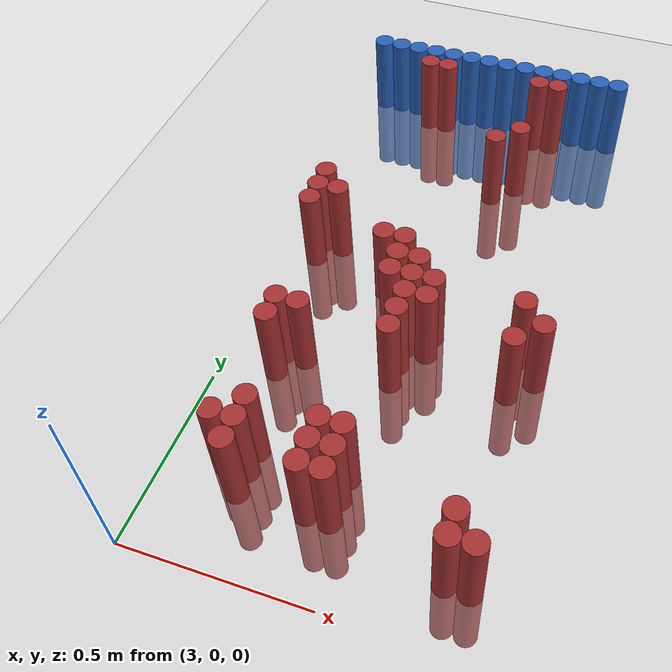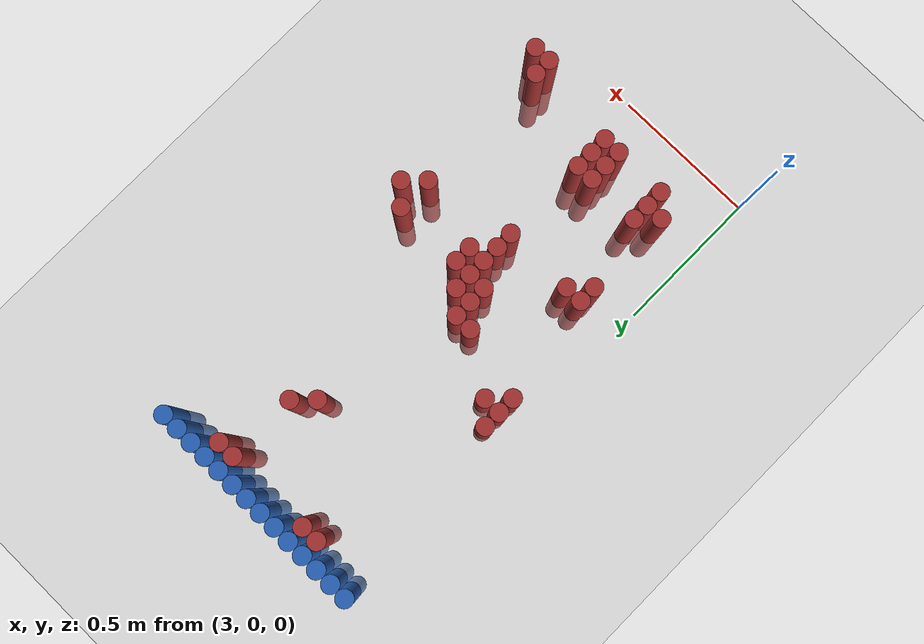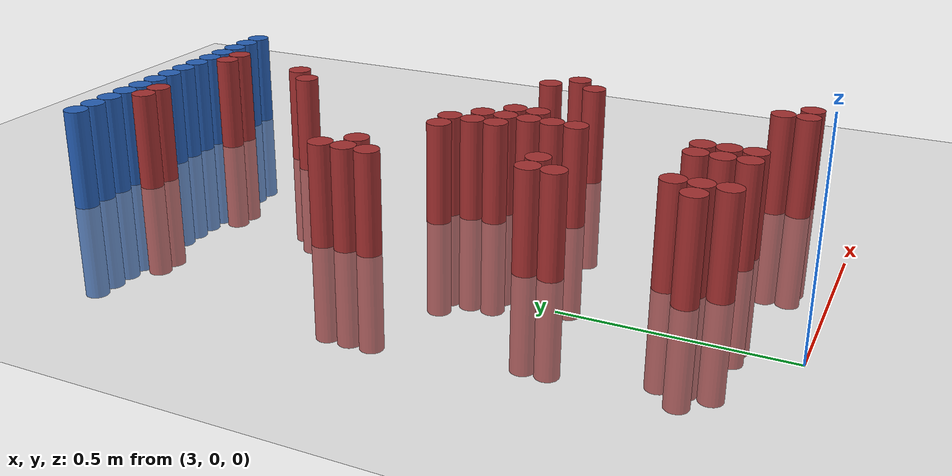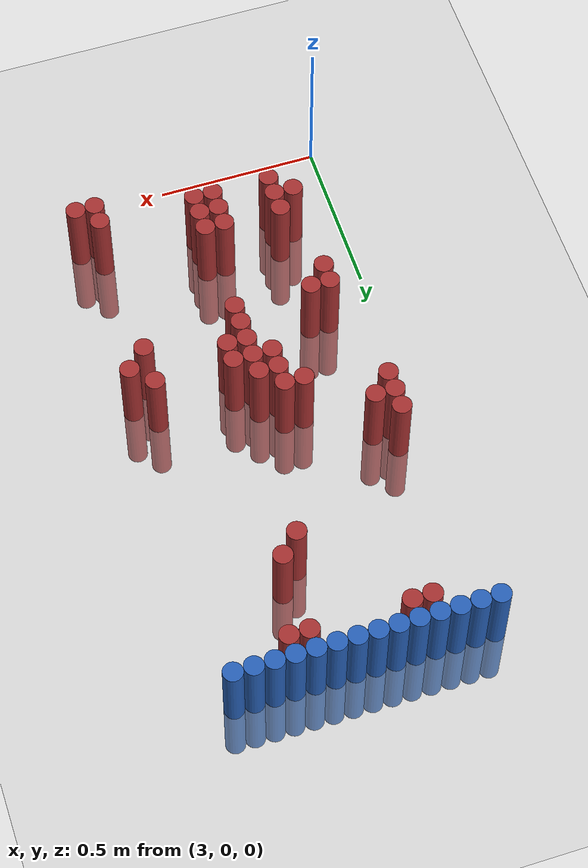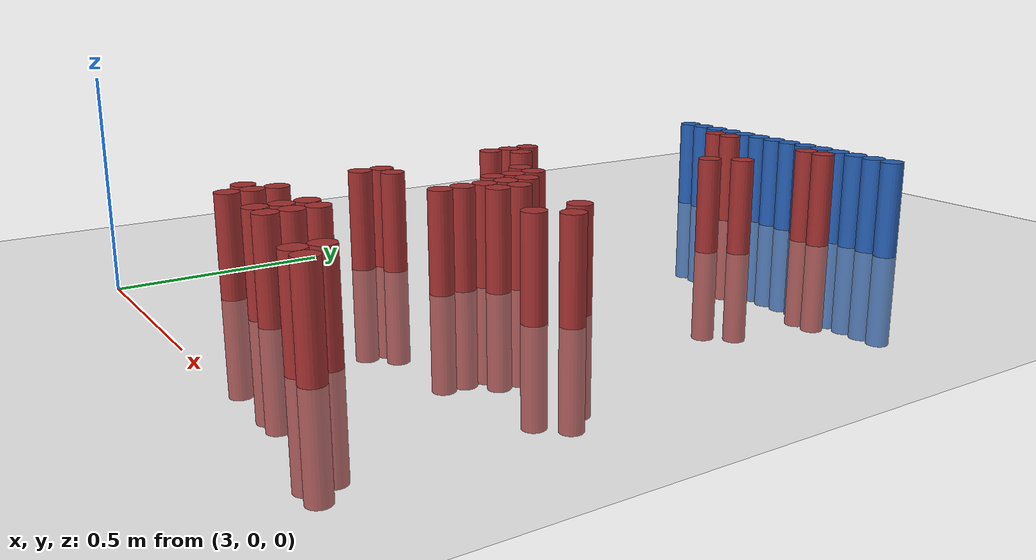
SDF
<sdf version="1.6">
 <world name="default">
  <model name="ground_plane">
   <static>1</static>
   <link name="link">
    <collision name="collision">
     <geometry><plane><normal>0 0 1</normal><size>100 100</size></plane></geometry>
     <surface><friction><ode><mu>100</mu><mu2>50</mu2></ode></friction></surface>
    </collision>
    <visual name="visual">
     <cast_shadows>0</cast_shadows>
     <geometry><plane><normal>0 0 1</normal><size>100 100</size></plane></geometry>
     <material>
      <script><uri>file://media/materials/scripts/gazebo.material</uri><name>Gazebo/Grey</name></script>
     </material>
    </visual>
   </link>
  </model>
  <model name="unit_cylinder_111">
   <static>1</static>
   <pose>3.030000 1.770000 0.000000 0.000000 0.000000 0.000000</pose>
   <link name="link">
    <inertial>
     <mass>1</mass>
     <inertia><ixx>0.145833</ixx><ixy>0</ixy><ixz>0</ixz><iyy>0.145833</iyy><iyz>0</iyz><izz>0.125</izz></inertia>
    </inertial>
    <collision name="collision">
     <geometry><cylinder><radius>0.030000</radius><length>0.5</length></cylinder></geometry>
    </collision>
    <visual name="visual">
     <geometry><cylinder><radius>0.030000</radius><length>0.5</length></cylinder></geometry>
     <material>
      <ambient>0.152000 0.379000 0.720000 1</ambient>
      <diffuse>0.152000 0.379000 0.720000 1</diffuse>
     </material>
     <material>
      <script><name>Gazebo/Grey</name><uri>file://media/materials/scripts/gazebo.material</uri></script>
     </material>
    </visual>
   </link>
  </model>
  <model name="unit_cylinder_112">
   <static>1</static>
   <pose>3.090000 1.770000 0.000000 0.000000 0.000000 0.000000</pose>
   <link name="link">
    <inertial>
     <mass>1</mass>
     <inertia><ixx>0.145833</ixx><ixy>0</ixy><ixz>0</ixz><iyy>0.145833</iyy><iyz>0</iyz><izz>0.125</izz></inertia>
    </inertial>
    <collision name="collision">
     <geometry><cylinder><radius>0.030000</radius><length>0.5</length></cylinder></geometry>
    </collision>
    <visual name="visual">
     <geometry><cylinder><radius>0.030000</radius><length>0.5</length></cylinder></geometry>
     <material>
      <ambient>0.152000 0.379000 0.720000 1</ambient>
      <diffuse>0.152000 0.379000 0.720000 1</diffuse>
     </material>
     <material>
      <script><name>Gazebo/Grey</name><uri>file://media/materials/scripts/gazebo.material</uri></script>
     </material>
    </visual>
   </link>
  </model>
  <model name="unit_cylinder_113">
   <static>1</static>
   <pose>3.150000 1.770000 0.000000 0.000000 0.000000 0.000000</pose>
   <link name="link">
    <inertial>
     <mass>1</mass>
     <inertia><ixx>0.145833</ixx><ixy>0</ixy><ixz>0</ixz><iyy>0.145833</iyy><iyz>0</iyz><izz>0.125</izz></inertia>
    </inertial>
    <collision name="collision">
     <geometry><cylinder><radius>0.030000</radius><length>0.5</length></cylinder></geometry>
    </collision>
    <visual name="visual">
     <geometry><cylinder><radius>0.030000</radius><length>0.5</length></cylinder></geometry>
     <material>
      <ambient>0.152000 0.379000 0.720000 1</ambient>
      <diffuse>0.152000 0.379000 0.720000 1</diffuse>
     </material>
     <material>
      <script><name>Gazebo/Grey</name><uri>file://media/materials/scripts/gazebo.material</uri></script>
     </material>
    </visual>
   </link>
  </model>
  <model name="unit_cylinder_114">
   <static>1</static>
   <pose>3.210000 1.770000 0.000000 0.000000 0.000000 0.000000</pose>
   <link name="link">
    <inertial>
     <mass>1</mass>
     <inertia><ixx>0.145833</ixx><ixy>0</ixy><ixz>0</ixz><iyy>0.145833</iyy><iyz>0</iyz><izz>0.125</izz></inertia>
    </inertial>
    <collision name="collision">
     <geometry><cylinder><radius>0.030000</radius><length>0.5</length></cylinder></geometry>
    </collision>
    <visual name="visual">
     <geometry><cylinder><radius>0.030000</radius><length>0.5</length></cylinder></geometry>
     <material>
      <ambient>0.152000 0.379000 0.720000 1</ambient>
      <diffuse>0.152000 0.379000 0.720000 1</diffuse>
     </material>
     <material>
      <script><name>Gazebo/Grey</name><uri>file://media/materials/scripts/gazebo.material</uri></script>
     </material>
    </visual>
   </link>
  </model>
  <model name="unit_cylinder_115">
   <static>1</static>
   <pose>3.270000 1.770000 0.000000 0.000000 0.000000 0.000000</pose>
   <link name="link">
    <inertial>
     <mass>1</mass>
     <inertia><ixx>0.145833</ixx><ixy>0</ixy><ixz>0</ixz><iyy>0.145833</iyy><iyz>0</iyz><izz>0.125</izz></inertia>
    </inertial>
    <collision name="collision">
     <geometry><cylinder><radius>0.030000</radius><length>0.5</length></cylinder></geometry>
    </collision>
    <visual name="visual">
     <geometry><cylinder><radius>0.030000</radius><length>0.5</length></cylinder></geometry>
     <material>
      <ambient>0.152000 0.379000 0.720000 1</ambient>
      <diffuse>0.152000 0.379000 0.720000 1</diffuse>
     </material>
     <material>
      <script><name>Gazebo/Grey</name><uri>file://media/materials/scripts/gazebo.material</uri></script>
     </material>
    </visual>
   </link>
  </model>
  <model name="unit_cylinder_116">
   <static>1</static>
   <pose>3.330000 1.770000 0.000000 0.000000 0.000000 0.000000</pose>
   <link name="link">
    <inertial>
     <mass>1</mass>
     <inertia><ixx>0.145833</ixx><ixy>0</ixy><ixz>0</ixz><iyy>0.145833</iyy><iyz>0</iyz><izz>0.125</izz></inertia>
    </inertial>
    <collision name="collision">
     <geometry><cylinder><radius>0.030000</radius><length>0.5</length></cylinder></geometry>
    </collision>
    <visual name="visual">
     <geometry><cylinder><radius>0.030000</radius><length>0.5</length></cylinder></geometry>
     <material>
      <ambient>0.152000 0.379000 0.720000 1</ambient>
      <diffuse>0.152000 0.379000 0.720000 1</diffuse>
     </material>
     <material>
      <script><name>Gazebo/Grey</name><uri>file://media/materials/scripts/gazebo.material</uri></script>
     </material>
    </visual>
   </link>
  </model>
  <model name="unit_cylinder_117">
   <static>1</static>
   <pose>3.390000 1.770000 0.000000 0.000000 0.000000 0.000000</pose>
   <link name="link">
    <inertial>
     <mass>1</mass>
     <inertia><ixx>0.145833</ixx><ixy>0</ixy><ixz>0</ixz><iyy>0.145833</iyy><iyz>0</iyz><izz>0.125</izz></inertia>
    </inertial>
    <collision name="collision">
     <geometry><cylinder><radius>0.030000</radius><length>0.5</length></cylinder></geometry>
    </collision>
    <visual name="visual">
     <geometry><cylinder><radius>0.030000</radius><length>0.5</length></cylinder></geometry>
     <material>
      <ambient>0.152000 0.379000 0.720000 1</ambient>
      <diffuse>0.152000 0.379000 0.720000 1</diffuse>
     </material>
     <material>
      <script><name>Gazebo/Grey</name><uri>file://media/materials/scripts/gazebo.material</uri></script>
     </material>
    </visual>
   </link>
  </model>
  <model name="unit_cylinder_118">
   <static>1</static>
   <pose>3.450000 1.770000 0.000000 0.000000 0.000000 0.000000</pose>
   <link name="link">
    <inertial>
     <mass>1</mass>
     <inertia><ixx>0.145833</ixx><ixy>0</ixy><ixz>0</ixz><iyy>0.145833</iyy><iyz>0</iyz><izz>0.125</izz></inertia>
    </inertial>
    <collision name="collision">
     <geometry><cylinder><radius>0.030000</radius><length>0.5</length></cylinder></geometry>
    </collision>
    <visual name="visual">
     <geometry><cylinder><radius>0.030000</radius><length>0.5</length></cylinder></geometry>
     <material>
      <ambient>0.152000 0.379000 0.720000 1</ambient>
      <diffuse>0.152000 0.379000 0.720000 1</diffuse>
     </material>
     <material>
      <script><name>Gazebo/Grey</name><uri>file://media/materials/scripts/gazebo.material</uri></script>
     </material>
    </visual>
   </link>
  </model>
  <model name="unit_cylinder_119">
   <static>1</static>
   <pose>3.510000 1.770000 0.000000 0.000000 0.000000 0.000000</pose>
   <link name="link">
    <inertial>
     <mass>1</mass>
     <inertia><ixx>0.145833</ixx><ixy>0</ixy><ixz>0</ixz><iyy>0.145833</iyy><iyz>0</iyz><izz>0.125</izz></inertia>
    </inertial>
    <collision name="collision">
     <geometry><cylinder><radius>0.030000</radius><length>0.5</length></cylinder></geometry>
    </collision>
    <visual name="visual">
     <geometry><cylinder><radius>0.030000</radius><length>0.5</length></cylinder></geometry>
     <material>
      <ambient>0.152000 0.379000 0.720000 1</ambient>
      <diffuse>0.152000 0.379000 0.720000 1</diffuse>
     </material>
     <material>
      <script><name>Gazebo/Grey</name><uri>file://media/materials/scripts/gazebo.material</uri></script>
     </material>
    </visual>
   </link>
  </model>
  <model name="unit_cylinder_120">
   <static>1</static>
   <pose>3.570000 1.770000 0.000000 0.000000 0.000000 0.000000</pose>
   <link name="link">
    <inertial>
     <mass>1</mass>
     <inertia><ixx>0.145833</ixx><ixy>0</ixy><ixz>0</ixz><iyy>0.145833</iyy><iyz>0</iyz><izz>0.125</izz></inertia>
    </inertial>
    <collision name="collision">
     <geometry><cylinder><radius>0.030000</radius><length>0.5</length></cylinder></geometry>
    </collision>
    <visual name="visual">
     <geometry><cylinder><radius>0.030000</radius><length>0.5</length></cylinder></geometry>
     <material>
      <ambient>0.152000 0.379000 0.720000 1</ambient>
      <diffuse>0.152000 0.379000 0.720000 1</diffuse>
     </material>
     <material>
      <script><name>Gazebo/Grey</name><uri>file://media/materials/scripts/gazebo.material</uri></script>
     </material>
    </visual>
   </link>
  </model>
  <model name="unit_cylinder_121">
   <static>1</static>
   <pose>3.630000 1.770000 0.000000 0.000000 0.000000 0.000000</pose>
   <link name="link">
    <inertial>
     <mass>1</mass>
     <inertia><ixx>0.145833</ixx><ixy>0</ixy><ixz>0</ixz><iyy>0.145833</iyy><iyz>0</iyz><izz>0.125</izz></inertia>
    </inertial>
    <collision name="collision">
     <geometry><cylinder><radius>0.030000</radius><length>0.5</length></cylinder></geometry>
    </collision>
    <visual name="visual">
     <geometry><cylinder><radius>0.030000</radius><length>0.5</length></cylinder></geometry>
     <material>
      <ambient>0.152000 0.379000 0.720000 1</ambient>
      <diffuse>0.152000 0.379000 0.720000 1</diffuse>
     </material>
     <material>
      <script><name>Gazebo/Grey</name><uri>file://media/materials/scripts/gazebo.material</uri></script>
     </material>
    </visual>
   </link>
  </model>
  <model name="unit_cylinder_122">
   <static>1</static>
   <pose>3.690000 1.770000 0.000000 0.000000 0.000000 0.000000</pose>
   <link name="link">
    <inertial>
     <mass>1</mass>
     <inertia><ixx>0.145833</ixx><ixy>0</ixy><ixz>0</ixz><iyy>0.145833</iyy><iyz>0</iyz><izz>0.125</izz></inertia>
    </inertial>
    <collision name="collision">
     <geometry><cylinder><radius>0.030000</radius><length>0.5</length></cylinder></geometry>
    </collision>
    <visual name="visual">
     <geometry><cylinder><radius>0.030000</radius><length>0.5</length></cylinder></geometry>
     <material>
      <ambient>0.152000 0.379000 0.720000 1</ambient>
      <diffuse>0.152000 0.379000 0.720000 1</diffuse>
     </material>
     <material>
      <script><name>Gazebo/Grey</name><uri>file://media/materials/scripts/gazebo.material</uri></script>
     </material>
    </visual>
   </link>
  </model>
  <model name="unit_cylinder_123">
   <static>1</static>
   <pose>3.750000 1.770000 0.000000 0.000000 0.000000 0.000000</pose>
   <link name="link">
    <inertial>
     <mass>1</mass>
     <inertia><ixx>0.145833</ixx><ixy>0</ixy><ixz>0</ixz><iyy>0.145833</iyy><iyz>0</iyz><izz>0.125</izz></inertia>
    </inertial>
    <collision name="collision">
     <geometry><cylinder><radius>0.030000</radius><length>0.5</length></cylinder></geometry>
    </collision>
    <visual name="visual">
     <geometry><cylinder><radius>0.030000</radius><length>0.5</length></cylinder></geometry>
     <material>
      <ambient>0.152000 0.379000 0.720000 1</ambient>
      <diffuse>0.152000 0.379000 0.720000 1</diffuse>
     </material>
     <material>
      <script><name>Gazebo/Grey</name><uri>file://media/materials/scripts/gazebo.material</uri></script>
     </material>
    </visual>
   </link>
  </model>
  <model name="unit_cylinder_124">
   <static>1</static>
   <pose>3.810000 1.770000 0.000000 0.000000 0.000000 0.000000</pose>
   <link name="link">
    <inertial>
     <mass>1</mass>
     <inertia><ixx>0.145833</ixx><ixy>0</ixy><ixz>0</ixz><iyy>0.145833</iyy><iyz>0</iyz><izz>0.125</izz></inertia>
    </inertial>
    <collision name="collision">
     <geometry><cylinder><radius>0.030000</radius><length>0.5</length></cylinder></geometry>
    </collision>
    <visual name="visual">
     <geometry><cylinder><radius>0.030000</radius><length>0.5</length></cylinder></geometry>
     <material>
      <ambient>0.152000 0.379000 0.720000 1</ambient>
      <diffuse>0.152000 0.379000 0.720000 1</diffuse>
     </material>
     <material>
      <script><name>Gazebo/Grey</name><uri>file://media/materials/scripts/gazebo.material</uri></script>
     </material>
    </visual>
   </link>
  </model>
  <model name="unit_cylinder_130">
   <static>1</static>
   <pose>3.210000 1.710000 0.000000 0.000000 0.000000 0.000000</pose>
   <link name="link">
    <inertial>
     <mass>1</mass>
     <inertia><ixx>0.145833</ixx><ixy>0</ixy><ixz>0</ixz><iyy>0.145833</iyy><iyz>0</iyz><izz>0.125</izz></inertia>
    </inertial>
    <collision name="collision">
     <geometry><cylinder><radius>0.030000</radius><length>0.5</length></cylinder></geometry>
    </collision>
    <visual name="visual">
     <geometry><cylinder><radius>0.030000</radius><length>0.5</length></cylinder></geometry>
     <material>
      <ambient>0.648000 0.192000 0.192000 1</ambient>
      <diffuse>0.648000 0.192000 0.192000 1</diffuse>
     </material>
     <material>
      <script><name>Gazebo/Grey</name><uri>file://media/materials/scripts/gazebo.material</uri></script>
     </material>
    </visual>
   </link>
  </model>
  <model name="unit_cylinder_131">
   <static>1</static>
   <pose>3.270000 1.710000 0.000000 0.000000 0.000000 0.000000</pose>
   <link name="link">
    <inertial>
     <mass>1</mass>
     <inertia><ixx>0.145833</ixx><ixy>0</ixy><ixz>0</ixz><iyy>0.145833</iyy><iyz>0</iyz><izz>0.125</izz></inertia>
    </inertial>
    <collision name="collision">
     <geometry><cylinder><radius>0.030000</radius><length>0.5</length></cylinder></geometry>
    </collision>
    <visual name="visual">
     <geometry><cylinder><radius>0.030000</radius><length>0.5</length></cylinder></geometry>
     <material>
      <ambient>0.648000 0.192000 0.192000 1</ambient>
      <diffuse>0.648000 0.192000 0.192000 1</diffuse>
     </material>
     <material>
      <script><name>Gazebo/Grey</name><uri>file://media/materials/scripts/gazebo.material</uri></script>
     </material>
    </visual>
   </link>
  </model>
  <model name="unit_cylinder_132">
   <static>1</static>
   <pose>3.570000 1.710000 0.000000 0.000000 0.000000 0.000000</pose>
   <link name="link">
    <inertial>
     <mass>1</mass>
     <inertia><ixx>0.145833</ixx><ixy>0</ixy><ixz>0</ixz><iyy>0.145833</iyy><iyz>0</iyz><izz>0.125</izz></inertia>
    </inertial>
    <collision name="collision">
     <geometry><cylinder><radius>0.030000</radius><length>0.5</length></cylinder></geometry>
    </collision>
    <visual name="visual">
     <geometry><cylinder><radius>0.030000</radius><length>0.5</length></cylinder></geometry>
     <material>
      <ambient>0.648000 0.192000 0.192000 1</ambient>
      <diffuse>0.648000 0.192000 0.192000 1</diffuse>
     </material>
     <material>
      <script><name>Gazebo/Grey</name><uri>file://media/materials/scripts/gazebo.material</uri></script>
     </material>
    </visual>
   </link>
  </model>
  <model name="unit_cylinder_133">
   <static>1</static>
   <pose>3.630000 1.710000 0.000000 0.000000 0.000000 0.000000</pose>
   <link name="link">
    <inertial>
     <mass>1</mass>
     <inertia><ixx>0.145833</ixx><ixy>0</ixy><ixz>0</ixz><iyy>0.145833</iyy><iyz>0</iyz><izz>0.125</izz></inertia>
    </inertial>
    <collision name="collision">
     <geometry><cylinder><radius>0.030000</radius><length>0.5</length></cylinder></geometry>
    </collision>
    <visual name="visual">
     <geometry><cylinder><radius>0.030000</radius><length>0.5</length></cylinder></geometry>
     <material>
      <ambient>0.648000 0.192000 0.192000 1</ambient>
      <diffuse>0.648000 0.192000 0.192000 1</diffuse>
     </material>
     <material>
      <script><name>Gazebo/Grey</name><uri>file://media/materials/scripts/gazebo.material</uri></script>
     </material>
    </visual>
   </link>
  </model>
  <model name="unit_cylinder_134">
   <static>1</static>
   <pose>3.570000 1.470000 0.000000 0.000000 0.000000 0.000000</pose>
   <link name="link">
    <inertial>
     <mass>1</mass>
     <inertia><ixx>0.145833</ixx><ixy>0</ixy><ixz>0</ixz><iyy>0.145833</iyy><iyz>0</iyz><izz>0.125</izz></inertia>
    </inertial>
    <collision name="collision">
     <geometry><cylinder><radius>0.030000</radius><length>0.5</length></cylinder></geometry>
    </collision>
    <visual name="visual">
     <geometry><cylinder><radius>0.030000</radius><length>0.5</length></cylinder></geometry>
     <material>
      <ambient>0.648000 0.192000 0.192000 1</ambient>
      <diffuse>0.648000 0.192000 0.192000 1</diffuse>
     </material>
     <material>
      <script><name>Gazebo/Grey</name><uri>file://media/materials/scripts/gazebo.material</uri></script>
     </material>
    </visual>
   </link>
  </model>
  <model name="unit_cylinder_135">
   <static>1</static>
   <pose>3.510000 1.410000 0.000000 0.000000 0.000000 0.000000</pose>
   <link name="link">
    <inertial>
     <mass>1</mass>
     <inertia><ixx>0.145833</ixx><ixy>0</ixy><ixz>0</ixz><iyy>0.145833</iyy><iyz>0</iyz><izz>0.125</izz></inertia>
    </inertial>
    <collision name="collision">
     <geometry><cylinder><radius>0.030000</radius><length>0.5</length></cylinder></geometry>
    </collision>
    <visual name="visual">
     <geometry><cylinder><radius>0.030000</radius><length>0.5</length></cylinder></geometry>
     <material>
      <ambient>0.648000 0.192000 0.192000 1</ambient>
      <diffuse>0.648000 0.192000 0.192000 1</diffuse>
     </material>
     <material>
      <script><name>Gazebo/Grey</name><uri>file://media/materials/scripts/gazebo.material</uri></script>
     </material>
    </visual>
   </link>
  </model>
  <model name="unit_cylinder_147">
   <static>1</static>
   <pose>3.090000 1.110000 0.000000 0.000000 0.000000 0.000000</pose>
   <link name="link">
    <inertial>
     <mass>1</mass>
     <inertia><ixx>0.145833</ixx><ixy>0</ixy><ixz>0</ixz><iyy>0.145833</iyy><iyz>0</iyz><izz>0.125</izz></inertia>
    </inertial>
    <collision name="collision">
     <geometry><cylinder><radius>0.030000</radius><length>0.5</length></cylinder></geometry>
    </collision>
    <visual name="visual">
     <geometry><cylinder><radius>0.030000</radius><length>0.5</length></cylinder></geometry>
     <material>
      <ambient>0.648000 0.192000 0.192000 1</ambient>
      <diffuse>0.648000 0.192000 0.192000 1</diffuse>
     </material>
     <material>
      <script><name>Gazebo/Grey</name><uri>file://media/materials/scripts/gazebo.material</uri></script>
     </material>
    </visual>
   </link>
  </model>
  <model name="unit_cylinder_148">
   <static>1</static>
   <pose>3.090000 1.050000 0.000000 0.000000 0.000000 0.000000</pose>
   <link name="link">
    <inertial>
     <mass>1</mass>
     <inertia><ixx>0.145833</ixx><ixy>0</ixy><ixz>0</ixz><iyy>0.145833</iyy><iyz>0</iyz><izz>0.125</izz></inertia>
    </inertial>
    <collision name="collision">
     <geometry><cylinder><radius>0.030000</radius><length>0.5</length></cylinder></geometry>
    </collision>
    <visual name="visual">
     <geometry><cylinder><radius>0.030000</radius><length>0.5</length></cylinder></geometry>
     <material>
      <ambient>0.648000 0.192000 0.192000 1</ambient>
      <diffuse>0.648000 0.192000 0.192000 1</diffuse>
     </material>
     <material>
      <script><name>Gazebo/Grey</name><uri>file://media/materials/scripts/gazebo.material</uri></script>
     </material>
    </visual>
   </link>
  </model>
  <model name="unit_cylinder_149">
   <static>1</static>
   <pose>3.150000 1.050000 0.000000 0.000000 0.000000 0.000000</pose>
   <link name="link">
    <inertial>
     <mass>1</mass>
     <inertia><ixx>0.145833</ixx><ixy>0</ixy><ixz>0</ixz><iyy>0.145833</iyy><iyz>0</iyz><izz>0.125</izz></inertia>
    </inertial>
    <collision name="collision">
     <geometry><cylinder><radius>0.030000</radius><length>0.5</length></cylinder></geometry>
    </collision>
    <visual name="visual">
     <geometry><cylinder><radius>0.030000</radius><length>0.5</length></cylinder></geometry>
     <material>
      <ambient>0.648000 0.192000 0.192000 1</ambient>
      <diffuse>0.648000 0.192000 0.192000 1</diffuse>
     </material>
     <material>
      <script><name>Gazebo/Grey</name><uri>file://media/materials/scripts/gazebo.material</uri></script>
     </material>
    </visual>
   </link>
  </model>
  <model name="unit_cylinder_151">
   <static>1</static>
   <pose>3.090000 0.990000 0.000000 0.000000 0.000000 0.000000</pose>
   <link name="link">
    <inertial>
     <mass>1</mass>
     <inertia><ixx>0.145833</ixx><ixy>0</ixy><ixz>0</ixz><iyy>0.145833</iyy><iyz>0</iyz><izz>0.125</izz></inertia>
    </inertial>
    <collision name="collision">
     <geometry><cylinder><radius>0.030000</radius><length>0.5</length></cylinder></geometry>
    </collision>
    <visual name="visual">
     <geometry><cylinder><radius>0.030000</radius><length>0.5</length></cylinder></geometry>
     <material>
      <ambient>0.648000 0.192000 0.192000 1</ambient>
      <diffuse>0.648000 0.192000 0.192000 1</diffuse>
     </material>
     <material>
      <script><name>Gazebo/Grey</name><uri>file://media/materials/scripts/gazebo.material</uri></script>
     </material>
    </visual>
   </link>
  </model>
  <model name="unit_cylinder_155">
   <static>1</static>
   <pose>3.330000 0.930000 0.000000 0.000000 0.000000 0.000000</pose>
   <link name="link">
    <inertial>
     <mass>1</mass>
     <inertia><ixx>0.145833</ixx><ixy>0</ixy><ixz>0</ixz><iyy>0.145833</iyy><iyz>0</iyz><izz>0.125</izz></inertia>
    </inertial>
    <collision name="collision">
     <geometry><cylinder><radius>0.030000</radius><length>0.5</length></cylinder></geometry>
    </collision>
    <visual name="visual">
     <geometry><cylinder><radius>0.030000</radius><length>0.5</length></cylinder></geometry>
     <material>
      <ambient>0.648000 0.192000 0.192000 1</ambient>
      <diffuse>0.648000 0.192000 0.192000 1</diffuse>
     </material>
     <material>
      <script><name>Gazebo/Grey</name><uri>file://media/materials/scripts/gazebo.material</uri></script>
     </material>
    </visual>
   </link>
  </model>
  <model name="unit_cylinder_156">
   <static>1</static>
   <pose>3.390000 0.930000 0.000000 0.000000 0.000000 0.000000</pose>
   <link name="link">
    <inertial>
     <mass>1</mass>
     <inertia><ixx>0.145833</ixx><ixy>0</ixy><ixz>0</ixz><iyy>0.145833</iyy><iyz>0</iyz><izz>0.125</izz></inertia>
    </inertial>
    <collision name="collision">
     <geometry><cylinder><radius>0.030000</radius><length>0.5</length></cylinder></geometry>
    </collision>
    <visual name="visual">
     <geometry><cylinder><radius>0.030000</radius><length>0.5</length></cylinder></geometry>
     <material>
      <ambient>0.648000 0.192000 0.192000 1</ambient>
      <diffuse>0.648000 0.192000 0.192000 1</diffuse>
     </material>
     <material>
      <script><name>Gazebo/Grey</name><uri>file://media/materials/scripts/gazebo.material</uri></script>
     </material>
    </visual>
   </link>
  </model>
  <model name="unit_cylinder_162">
   <static>1</static>
   <pose>3.390000 0.870000 0.000000 0.000000 0.000000 0.000000</pose>
   <link name="link">
    <inertial>
     <mass>1</mass>
     <inertia><ixx>0.145833</ixx><ixy>0</ixy><ixz>0</ixz><iyy>0.145833</iyy><iyz>0</iyz><izz>0.125</izz></inertia>
    </inertial>
    <collision name="collision">
     <geometry><cylinder><radius>0.030000</radius><length>0.5</length></cylinder></geometry>
    </collision>
    <visual name="visual">
     <geometry><cylinder><radius>0.030000</radius><length>0.5</length></cylinder></geometry>
     <material>
      <ambient>0.648000 0.192000 0.192000 1</ambient>
      <diffuse>0.648000 0.192000 0.192000 1</diffuse>
     </material>
     <material>
      <script><name>Gazebo/Grey</name><uri>file://media/materials/scripts/gazebo.material</uri></script>
     </material>
    </visual>
   </link>
  </model>
  <model name="unit_cylinder_163">
   <static>1</static>
   <pose>3.450000 0.870000 0.000000 0.000000 0.000000 0.000000</pose>
   <link name="link">
    <inertial>
     <mass>1</mass>
     <inertia><ixx>0.145833</ixx><ixy>0</ixy><ixz>0</ixz><iyy>0.145833</iyy><iyz>0</iyz><izz>0.125</izz></inertia>
    </inertial>
    <collision name="collision">
     <geometry><cylinder><radius>0.030000</radius><length>0.5</length></cylinder></geometry>
    </collision>
    <visual name="visual">
     <geometry><cylinder><radius>0.030000</radius><length>0.5</length></cylinder></geometry>
     <material>
      <ambient>0.648000 0.192000 0.192000 1</ambient>
      <diffuse>0.648000 0.192000 0.192000 1</diffuse>
     </material>
     <material>
      <script><name>Gazebo/Grey</name><uri>file://media/materials/scripts/gazebo.material</uri></script>
     </material>
    </visual>
   </link>
  </model>
  <model name="unit_cylinder_167">
   <static>1</static>
   <pose>3.390000 0.810000 0.000000 0.000000 0.000000 0.000000</pose>
   <link name="link">
    <inertial>
     <mass>1</mass>
     <inertia><ixx>0.145833</ixx><ixy>0</ixy><ixz>0</ixz><iyy>0.145833</iyy><iyz>0</iyz><izz>0.125</izz></inertia>
    </inertial>
    <collision name="collision">
     <geometry><cylinder><radius>0.030000</radius><length>0.5</length></cylinder></geometry>
    </collision>
    <visual name="visual">
     <geometry><cylinder><radius>0.030000</radius><length>0.5</length></cylinder></geometry>
     <material>
      <ambient>0.648000 0.192000 0.192000 1</ambient>
      <diffuse>0.648000 0.192000 0.192000 1</diffuse>
     </material>
     <material>
      <script><name>Gazebo/Grey</name><uri>file://media/materials/scripts/gazebo.material</uri></script>
     </material>
    </visual>
   </link>
  </model>
  <model name="unit_cylinder_168">
   <static>1</static>
   <pose>3.450000 0.810000 0.000000 0.000000 0.000000 0.000000</pose>
   <link name="link">
    <inertial>
     <mass>1</mass>
     <inertia><ixx>0.145833</ixx><ixy>0</ixy><ixz>0</ixz><iyy>0.145833</iyy><iyz>0</iyz><izz>0.125</izz></inertia>
    </inertial>
    <collision name="collision">
     <geometry><cylinder><radius>0.030000</radius><length>0.5</length></cylinder></geometry>
    </collision>
    <visual name="visual">
     <geometry><cylinder><radius>0.030000</radius><length>0.5</length></cylinder></geometry>
     <material>
      <ambient>0.648000 0.192000 0.192000 1</ambient>
      <diffuse>0.648000 0.192000 0.192000 1</diffuse>
     </material>
     <material>
      <script><name>Gazebo/Grey</name><uri>file://media/materials/scripts/gazebo.material</uri></script>
     </material>
    </visual>
   </link>
  </model>
  <model name="unit_cylinder_169">
   <static>1</static>
   <pose>3.510000 0.810000 0.000000 0.000000 0.000000 0.000000</pose>
   <link name="link">
    <inertial>
     <mass>1</mass>
     <inertia><ixx>0.145833</ixx><ixy>0</ixy><ixz>0</ixz><iyy>0.145833</iyy><iyz>0</iyz><izz>0.125</izz></inertia>
    </inertial>
    <collision name="collision">
     <geometry><cylinder><radius>0.030000</radius><length>0.5</length></cylinder></geometry>
    </collision>
    <visual name="visual">
     <geometry><cylinder><radius>0.030000</radius><length>0.5</length></cylinder></geometry>
     <material>
      <ambient>0.648000 0.192000 0.192000 1</ambient>
      <diffuse>0.648000 0.192000 0.192000 1</diffuse>
     </material>
     <material>
      <script><name>Gazebo/Grey</name><uri>file://media/materials/scripts/gazebo.material</uri></script>
     </material>
    </visual>
   </link>
  </model>
  <model name="unit_cylinder_170">
   <static>1</static>
   <pose>3.750000 0.810000 0.000000 0.000000 0.000000 0.000000</pose>
   <link name="link">
    <inertial>
     <mass>1</mass>
     <inertia><ixx>0.145833</ixx><ixy>0</ixy><ixz>0</ixz><iyy>0.145833</iyy><iyz>0</iyz><izz>0.125</izz></inertia>
    </inertial>
    <collision name="collision">
     <geometry><cylinder><radius>0.030000</radius><length>0.5</length></cylinder></geometry>
    </collision>
    <visual name="visual">
     <geometry><cylinder><radius>0.030000</radius><length>0.5</length></cylinder></geometry>
     <material>
      <ambient>0.648000 0.192000 0.192000 1</ambient>
      <diffuse>0.648000 0.192000 0.192000 1</diffuse>
     </material>
     <material>
      <script><name>Gazebo/Grey</name><uri>file://media/materials/scripts/gazebo.material</uri></script>
     </material>
    </visual>
   </link>
  </model>
  <model name="unit_cylinder_173">
   <static>1</static>
   <pose>3.450000 0.750000 0.000000 0.000000 0.000000 0.000000</pose>
   <link name="link">
    <inertial>
     <mass>1</mass>
     <inertia><ixx>0.145833</ixx><ixy>0</ixy><ixz>0</ixz><iyy>0.145833</iyy><iyz>0</iyz><izz>0.125</izz></inertia>
    </inertial>
    <collision name="collision">
     <geometry><cylinder><radius>0.030000</radius><length>0.5</length></cylinder></geometry>
    </collision>
    <visual name="visual">
     <geometry><cylinder><radius>0.030000</radius><length>0.5</length></cylinder></geometry>
     <material>
      <ambient>0.648000 0.192000 0.192000 1</ambient>
      <diffuse>0.648000 0.192000 0.192000 1</diffuse>
     </material>
     <material>
      <script><name>Gazebo/Grey</name><uri>file://media/materials/scripts/gazebo.material</uri></script>
     </material>
    </visual>
   </link>
  </model>
  <model name="unit_cylinder_174">
   <static>1</static>
   <pose>3.510000 0.750000 0.000000 0.000000 0.000000 0.000000</pose>
   <link name="link">
    <inertial>
     <mass>1</mass>
     <inertia><ixx>0.145833</ixx><ixy>0</ixy><ixz>0</ixz><iyy>0.145833</iyy><iyz>0</iyz><izz>0.125</izz></inertia>
    </inertial>
    <collision name="collision">
     <geometry><cylinder><radius>0.030000</radius><length>0.5</length></cylinder></geometry>
    </collision>
    <visual name="visual">
     <geometry><cylinder><radius>0.030000</radius><length>0.5</length></cylinder></geometry>
     <material>
      <ambient>0.648000 0.192000 0.192000 1</ambient>
      <diffuse>0.648000 0.192000 0.192000 1</diffuse>
     </material>
     <material>
      <script><name>Gazebo/Grey</name><uri>file://media/materials/scripts/gazebo.material</uri></script>
     </material>
    </visual>
   </link>
  </model>
  <model name="unit_cylinder_175">
   <static>1</static>
   <pose>3.810000 0.750000 0.000000 0.000000 0.000000 0.000000</pose>
   <link name="link">
    <inertial>
     <mass>1</mass>
     <inertia><ixx>0.145833</ixx><ixy>0</ixy><ixz>0</ixz><iyy>0.145833</iyy><iyz>0</iyz><izz>0.125</izz></inertia>
    </inertial>
    <collision name="collision">
     <geometry><cylinder><radius>0.030000</radius><length>0.5</length></cylinder></geometry>
    </collision>
    <visual name="visual">
     <geometry><cylinder><radius>0.030000</radius><length>0.5</length></cylinder></geometry>
     <material>
      <ambient>0.648000 0.192000 0.192000 1</ambient>
      <diffuse>0.648000 0.192000 0.192000 1</diffuse>
     </material>
     <material>
      <script><name>Gazebo/Grey</name><uri>file://media/materials/scripts/gazebo.material</uri></script>
     </material>
    </visual>
   </link>
  </model>
  <model name="unit_cylinder_178">
   <static>1</static>
   <pose>3.450000 0.690000 0.000000 0.000000 0.000000 0.000000</pose>
   <link name="link">
    <inertial>
     <mass>1</mass>
     <inertia><ixx>0.145833</ixx><ixy>0</ixy><ixz>0</ixz><iyy>0.145833</iyy><iyz>0</iyz><izz>0.125</izz></inertia>
    </inertial>
    <collision name="collision">
     <geometry><cylinder><radius>0.030000</radius><length>0.5</length></cylinder></geometry>
    </collision>
    <visual name="visual">
     <geometry><cylinder><radius>0.030000</radius><length>0.5</length></cylinder></geometry>
     <material>
      <ambient>0.648000 0.192000 0.192000 1</ambient>
      <diffuse>0.648000 0.192000 0.192000 1</diffuse>
     </material>
     <material>
      <script><name>Gazebo/Grey</name><uri>file://media/materials/scripts/gazebo.material</uri></script>
     </material>
    </visual>
   </link>
  </model>
  <model name="unit_cylinder_179">
   <static>1</static>
   <pose>3.750000 0.690000 0.000000 0.000000 0.000000 0.000000</pose>
   <link name="link">
    <inertial>
     <mass>1</mass>
     <inertia><ixx>0.145833</ixx><ixy>0</ixy><ixz>0</ixz><iyy>0.145833</iyy><iyz>0</iyz><izz>0.125</izz></inertia>
    </inertial>
    <collision name="collision">
     <geometry><cylinder><radius>0.030000</radius><length>0.5</length></cylinder></geometry>
    </collision>
    <visual name="visual">
     <geometry><cylinder><radius>0.030000</radius><length>0.5</length></cylinder></geometry>
     <material>
      <ambient>0.648000 0.192000 0.192000 1</ambient>
      <diffuse>0.648000 0.192000 0.192000 1</diffuse>
     </material>
     <material>
      <script><name>Gazebo/Grey</name><uri>file://media/materials/scripts/gazebo.material</uri></script>
     </material>
    </visual>
   </link>
  </model>
  <model name="unit_cylinder_182">
   <static>1</static>
   <pose>3.150000 0.630000 0.000000 0.000000 0.000000 0.000000</pose>
   <link name="link">
    <inertial>
     <mass>1</mass>
     <inertia><ixx>0.145833</ixx><ixy>0</ixy><ixz>0</ixz><iyy>0.145833</iyy><iyz>0</iyz><izz>0.125</izz></inertia>
    </inertial>
    <collision name="collision">
     <geometry><cylinder><radius>0.030000</radius><length>0.5</length></cylinder></geometry>
    </collision>
    <visual name="visual">
     <geometry><cylinder><radius>0.030000</radius><length>0.5</length></cylinder></geometry>
     <material>
      <ambient>0.648000 0.192000 0.192000 1</ambient>
      <diffuse>0.648000 0.192000 0.192000 1</diffuse>
     </material>
     <material>
      <script><name>Gazebo/Grey</name><uri>file://media/materials/scripts/gazebo.material</uri></script>
     </material>
    </visual>
   </link>
  </model>
  <model name="unit_cylinder_183">
   <static>1</static>
   <pose>3.210000 0.630000 0.000000 0.000000 0.000000 0.000000</pose>
   <link name="link">
    <inertial>
     <mass>1</mass>
     <inertia><ixx>0.145833</ixx><ixy>0</ixy><ixz>0</ixz><iyy>0.145833</iyy><iyz>0</iyz><izz>0.125</izz></inertia>
    </inertial>
    <collision name="collision">
     <geometry><cylinder><radius>0.030000</radius><length>0.5</length></cylinder></geometry>
    </collision>
    <visual name="visual">
     <geometry><cylinder><radius>0.030000</radius><length>0.5</length></cylinder></geometry>
     <material>
      <ambient>0.648000 0.192000 0.192000 1</ambient>
      <diffuse>0.648000 0.192000 0.192000 1</diffuse>
     </material>
     <material>
      <script><name>Gazebo/Grey</name><uri>file://media/materials/scripts/gazebo.material</uri></script>
     </material>
    </visual>
   </link>
  </model>
  <model name="unit_cylinder_184">
   <static>1</static>
   <pose>3.450000 0.630000 0.000000 0.000000 0.000000 0.000000</pose>
   <link name="link">
    <inertial>
     <mass>1</mass>
     <inertia><ixx>0.145833</ixx><ixy>0</ixy><ixz>0</ixz><iyy>0.145833</iyy><iyz>0</iyz><izz>0.125</izz></inertia>
    </inertial>
    <collision name="collision">
     <geometry><cylinder><radius>0.030000</radius><length>0.5</length></cylinder></geometry>
    </collision>
    <visual name="visual">
     <geometry><cylinder><radius>0.030000</radius><length>0.5</length></cylinder></geometry>
     <material>
      <ambient>0.648000 0.192000 0.192000 1</ambient>
      <diffuse>0.648000 0.192000 0.192000 1</diffuse>
     </material>
     <material>
      <script><name>Gazebo/Grey</name><uri>file://media/materials/scripts/gazebo.material</uri></script>
     </material>
    </visual>
   </link>
  </model>
  <model name="unit_cylinder_188">
   <static>1</static>
   <pose>3.150000 0.570000 0.000000 0.000000 0.000000 0.000000</pose>
   <link name="link">
    <inertial>
     <mass>1</mass>
     <inertia><ixx>0.145833</ixx><ixy>0</ixy><ixz>0</ixz><iyy>0.145833</iyy><iyz>0</iyz><izz>0.125</izz></inertia>
    </inertial>
    <collision name="collision">
     <geometry><cylinder><radius>0.030000</radius><length>0.5</length></cylinder></geometry>
    </collision>
    <visual name="visual">
     <geometry><cylinder><radius>0.030000</radius><length>0.5</length></cylinder></geometry>
     <material>
      <ambient>0.648000 0.192000 0.192000 1</ambient>
      <diffuse>0.648000 0.192000 0.192000 1</diffuse>
     </material>
     <material>
      <script><name>Gazebo/Grey</name><uri>file://media/materials/scripts/gazebo.material</uri></script>
     </material>
    </visual>
   </link>
  </model>
  <model name="unit_cylinder_193">
   <static>1</static>
   <pose>3.210000 0.330000 0.000000 0.000000 0.000000 0.000000</pose>
   <link name="link">
    <inertial>
     <mass>1</mass>
     <inertia><ixx>0.145833</ixx><ixy>0</ixy><ixz>0</ixz><iyy>0.145833</iyy><iyz>0</iyz><izz>0.125</izz></inertia>
    </inertial>
    <collision name="collision">
     <geometry><cylinder><radius>0.030000</radius><length>0.5</length></cylinder></geometry>
    </collision>
    <visual name="visual">
     <geometry><cylinder><radius>0.030000</radius><length>0.5</length></cylinder></geometry>
     <material>
      <ambient>0.648000 0.192000 0.192000 1</ambient>
      <diffuse>0.648000 0.192000 0.192000 1</diffuse>
     </material>
     <material>
      <script><name>Gazebo/Grey</name><uri>file://media/materials/scripts/gazebo.material</uri></script>
     </material>
    </visual>
   </link>
  </model>
  <model name="unit_cylinder_194">
   <static>1</static>
   <pose>3.390000 0.330000 0.000000 0.000000 0.000000 0.000000</pose>
   <link name="link">
    <inertial>
     <mass>1</mass>
     <inertia><ixx>0.145833</ixx><ixy>0</ixy><ixz>0</ixz><iyy>0.145833</iyy><iyz>0</iyz><izz>0.125</izz></inertia>
    </inertial>
    <collision name="collision">
     <geometry><cylinder><radius>0.030000</radius><length>0.5</length></cylinder></geometry>
    </collision>
    <visual name="visual">
     <geometry><cylinder><radius>0.030000</radius><length>0.5</length></cylinder></geometry>
     <material>
      <ambient>0.648000 0.192000 0.192000 1</ambient>
      <diffuse>0.648000 0.192000 0.192000 1</diffuse>
     </material>
     <material>
      <script><name>Gazebo/Grey</name><uri>file://media/materials/scripts/gazebo.material</uri></script>
     </material>
    </visual>
   </link>
  </model>
  <model name="unit_cylinder_195">
   <static>1</static>
   <pose>3.450000 0.330000 0.000000 0.000000 0.000000 0.000000</pose>
   <link name="link">
    <inertial>
     <mass>1</mass>
     <inertia><ixx>0.145833</ixx><ixy>0</ixy><ixz>0</ixz><iyy>0.145833</iyy><iyz>0</iyz><izz>0.125</izz></inertia>
    </inertial>
    <collision name="collision">
     <geometry><cylinder><radius>0.030000</radius><length>0.5</length></cylinder></geometry>
    </collision>
    <visual name="visual">
     <geometry><cylinder><radius>0.030000</radius><length>0.5</length></cylinder></geometry>
     <material>
      <ambient>0.648000 0.192000 0.192000 1</ambient>
      <diffuse>0.648000 0.192000 0.192000 1</diffuse>
     </material>
     <material>
      <script><name>Gazebo/Grey</name><uri>file://media/materials/scripts/gazebo.material</uri></script>
     </material>
    </visual>
   </link>
  </model>
  <model name="unit_cylinder_197">
   <static>1</static>
   <pose>3.150000 0.270000 0.000000 0.000000 0.000000 0.000000</pose>
   <link name="link">
    <inertial>
     <mass>1</mass>
     <inertia><ixx>0.145833</ixx><ixy>0</ixy><ixz>0</ixz><iyy>0.145833</iyy><iyz>0</iyz><izz>0.125</izz></inertia>
    </inertial>
    <collision name="collision">
     <geometry><cylinder><radius>0.030000</radius><length>0.5</length></cylinder></geometry>
    </collision>
    <visual name="visual">
     <geometry><cylinder><radius>0.030000</radius><length>0.5</length></cylinder></geometry>
     <material>
      <ambient>0.648000 0.192000 0.192000 1</ambient>
      <diffuse>0.648000 0.192000 0.192000 1</diffuse>
     </material>
     <material>
      <script><name>Gazebo/Grey</name><uri>file://media/materials/scripts/gazebo.material</uri></script>
     </material>
    </visual>
   </link>
  </model>
  <model name="unit_cylinder_198">
   <static>1</static>
   <pose>3.210000 0.270000 0.000000 0.000000 0.000000 0.000000</pose>
   <link name="link">
    <inertial>
     <mass>1</mass>
     <inertia><ixx>0.145833</ixx><ixy>0</ixy><ixz>0</ixz><iyy>0.145833</iyy><iyz>0</iyz><izz>0.125</izz></inertia>
    </inertial>
    <collision name="collision">
     <geometry><cylinder><radius>0.030000</radius><length>0.5</length></cylinder></geometry>
    </collision>
    <visual name="visual">
     <geometry><cylinder><radius>0.030000</radius><length>0.5</length></cylinder></geometry>
     <material>
      <ambient>0.648000 0.192000 0.192000 1</ambient>
      <diffuse>0.648000 0.192000 0.192000 1</diffuse>
     </material>
     <material>
      <script><name>Gazebo/Grey</name><uri>file://media/materials/scripts/gazebo.material</uri></script>
     </material>
    </visual>
   </link>
  </model>
  <model name="unit_cylinder_199">
   <static>1</static>
   <pose>3.390000 0.270000 0.000000 0.000000 0.000000 0.000000</pose>
   <link name="link">
    <inertial>
     <mass>1</mass>
     <inertia><ixx>0.145833</ixx><ixy>0</ixy><ixz>0</ixz><iyy>0.145833</iyy><iyz>0</iyz><izz>0.125</izz></inertia>
    </inertial>
    <collision name="collision">
     <geometry><cylinder><radius>0.030000</radius><length>0.5</length></cylinder></geometry>
    </collision>
    <visual name="visual">
     <geometry><cylinder><radius>0.030000</radius><length>0.5</length></cylinder></geometry>
     <material>
      <ambient>0.648000 0.192000 0.192000 1</ambient>
      <diffuse>0.648000 0.192000 0.192000 1</diffuse>
     </material>
     <material>
      <script><name>Gazebo/Grey</name><uri>file://media/materials/scripts/gazebo.material</uri></script>
     </material>
    </visual>
   </link>
  </model>
  <model name="unit_cylinder_200">
   <static>1</static>
   <pose>3.450000 0.270000 0.000000 0.000000 0.000000 0.000000</pose>
   <link name="link">
    <inertial>
     <mass>1</mass>
     <inertia><ixx>0.145833</ixx><ixy>0</ixy><ixz>0</ixz><iyy>0.145833</iyy><iyz>0</iyz><izz>0.125</izz></inertia>
    </inertial>
    <collision name="collision">
     <geometry><cylinder><radius>0.030000</radius><length>0.5</length></cylinder></geometry>
    </collision>
    <visual name="visual">
     <geometry><cylinder><radius>0.030000</radius><length>0.5</length></cylinder></geometry>
     <material>
      <ambient>0.648000 0.192000 0.192000 1</ambient>
      <diffuse>0.648000 0.192000 0.192000 1</diffuse>
     </material>
     <material>
      <script><name>Gazebo/Grey</name><uri>file://media/materials/scripts/gazebo.material</uri></script>
     </material>
    </visual>
   </link>
  </model>
  <model name="unit_cylinder_203">
   <static>1</static>
   <pose>3.210000 0.210000 0.000000 0.000000 0.000000 0.000000</pose>
   <link name="link">
    <inertial>
     <mass>1</mass>
     <inertia><ixx>0.145833</ixx><ixy>0</ixy><ixz>0</ixz><iyy>0.145833</iyy><iyz>0</iyz><izz>0.125</izz></inertia>
    </inertial>
    <collision name="collision">
     <geometry><cylinder><radius>0.030000</radius><length>0.5</length></cylinder></geometry>
    </collision>
    <visual name="visual">
     <geometry><cylinder><radius>0.030000</radius><length>0.5</length></cylinder></geometry>
     <material>
      <ambient>0.648000 0.192000 0.192000 1</ambient>
      <diffuse>0.648000 0.192000 0.192000 1</diffuse>
     </material>
     <material>
      <script><name>Gazebo/Grey</name><uri>file://media/materials/scripts/gazebo.material</uri></script>
     </material>
    </visual>
   </link>
  </model>
  <model name="unit_cylinder_204">
   <static>1</static>
   <pose>3.390000 0.210000 0.000000 0.000000 0.000000 0.000000</pose>
   <link name="link">
    <inertial>
     <mass>1</mass>
     <inertia><ixx>0.145833</ixx><ixy>0</ixy><ixz>0</ixz><iyy>0.145833</iyy><iyz>0</iyz><izz>0.125</izz></inertia>
    </inertial>
    <collision name="collision">
     <geometry><cylinder><radius>0.030000</radius><length>0.5</length></cylinder></geometry>
    </collision>
    <visual name="visual">
     <geometry><cylinder><radius>0.030000</radius><length>0.5</length></cylinder></geometry>
     <material>
      <ambient>0.648000 0.192000 0.192000 1</ambient>
      <diffuse>0.648000 0.192000 0.192000 1</diffuse>
     </material>
     <material>
      <script><name>Gazebo/Grey</name><uri>file://media/materials/scripts/gazebo.material</uri></script>
     </material>
    </visual>
   </link>
  </model>
  <model name="unit_cylinder_205">
   <static>1</static>
   <pose>3.450000 0.210000 0.000000 0.000000 0.000000 0.000000</pose>
   <link name="link">
    <inertial>
     <mass>1</mass>
     <inertia><ixx>0.145833</ixx><ixy>0</ixy><ixz>0</ixz><iyy>0.145833</iyy><iyz>0</iyz><izz>0.125</izz></inertia>
    </inertial>
    <collision name="collision">
     <geometry><cylinder><radius>0.030000</radius><length>0.5</length></cylinder></geometry>
    </collision>
    <visual name="visual">
     <geometry><cylinder><radius>0.030000</radius><length>0.5</length></cylinder></geometry>
     <material>
      <ambient>0.648000 0.192000 0.192000 1</ambient>
      <diffuse>0.648000 0.192000 0.192000 1</diffuse>
     </material>
     <material>
      <script><name>Gazebo/Grey</name><uri>file://media/materials/scripts/gazebo.material</uri></script>
     </material>
    </visual>
   </link>
  </model>
  <model name="unit_cylinder_206">
   <static>1</static>
   <pose>3.750000 0.210000 0.000000 0.000000 0.000000 0.000000</pose>
   <link name="link">
    <inertial>
     <mass>1</mass>
     <inertia><ixx>0.145833</ixx><ixy>0</ixy><ixz>0</ixz><iyy>0.145833</iyy><iyz>0</iyz><izz>0.125</izz></inertia>
    </inertial>
    <collision name="collision">
     <geometry><cylinder><radius>0.030000</radius><length>0.5</length></cylinder></geometry>
    </collision>
    <visual name="visual">
     <geometry><cylinder><radius>0.030000</radius><length>0.5</length></cylinder></geometry>
     <material>
      <ambient>0.648000 0.192000 0.192000 1</ambient>
      <diffuse>0.648000 0.192000 0.192000 1</diffuse>
     </material>
     <material>
      <script><name>Gazebo/Grey</name><uri>file://media/materials/scripts/gazebo.material</uri></script>
     </material>
    </visual>
   </link>
  </model>
  <model name="unit_cylinder_212">
   <static>1</static>
   <pose>3.750000 0.150000 0.000000 0.000000 0.000000 0.000000</pose>
   <link name="link">
    <inertial>
     <mass>1</mass>
     <inertia><ixx>0.145833</ixx><ixy>0</ixy><ixz>0</ixz><iyy>0.145833</iyy><iyz>0</iyz><izz>0.125</izz></inertia>
    </inertial>
    <collision name="collision">
     <geometry><cylinder><radius>0.030000</radius><length>0.5</length></cylinder></geometry>
    </collision>
    <visual name="visual">
     <geometry><cylinder><radius>0.030000</radius><length>0.5</length></cylinder></geometry>
     <material>
      <ambient>0.648000 0.192000 0.192000 1</ambient>
      <diffuse>0.648000 0.192000 0.192000 1</diffuse>
     </material>
     <material>
      <script><name>Gazebo/Grey</name><uri>file://media/materials/scripts/gazebo.material</uri></script>
     </material>
    </visual>
   </link>
  </model>
  <model name="unit_cylinder_213">
   <static>1</static>
   <pose>3.810000 0.150000 0.000000 0.000000 0.000000 0.000000</pose>
   <link name="link">
    <inertial>
     <mass>1</mass>
     <inertia><ixx>0.145833</ixx><ixy>0</ixy><ixz>0</ixz><iyy>0.145833</iyy><iyz>0</iyz><izz>0.125</izz></inertia>
    </inertial>
    <collision name="collision">
     <geometry><cylinder><radius>0.030000</radius><length>0.5</length></cylinder></geometry>
    </collision>
    <visual name="visual">
     <geometry><cylinder><radius>0.030000</radius><length>0.5</length></cylinder></geometry>
     <material>
      <ambient>0.648000 0.192000 0.192000 1</ambient>
      <diffuse>0.648000 0.192000 0.192000 1</diffuse>
     </material>
     <material>
      <script><name>Gazebo/Grey</name><uri>file://media/materials/scripts/gazebo.material</uri></script>
     </material>
    </visual>
   </link>
  </model>
 </world>
</sdf>
